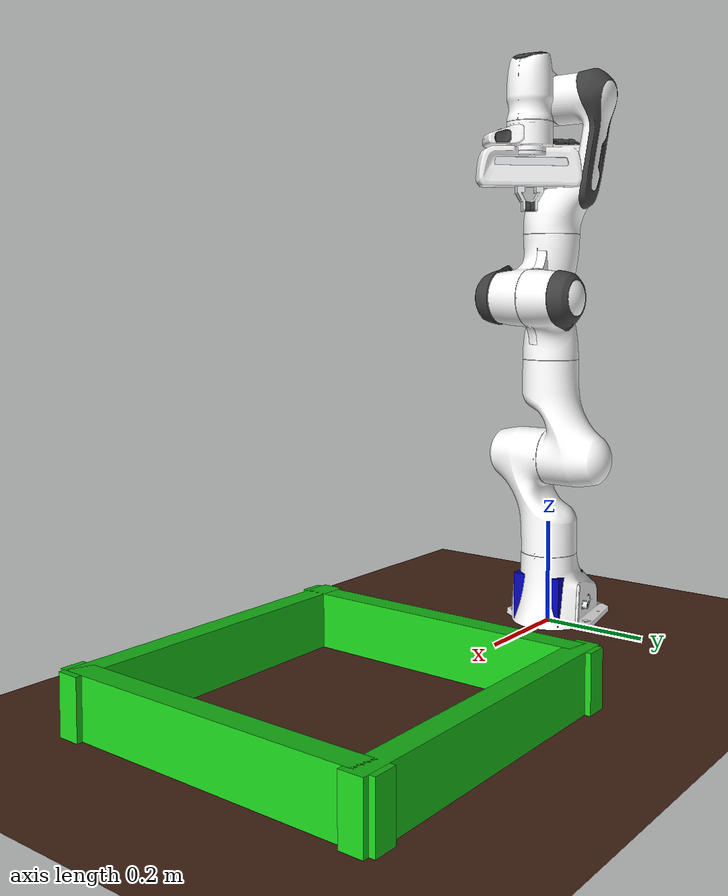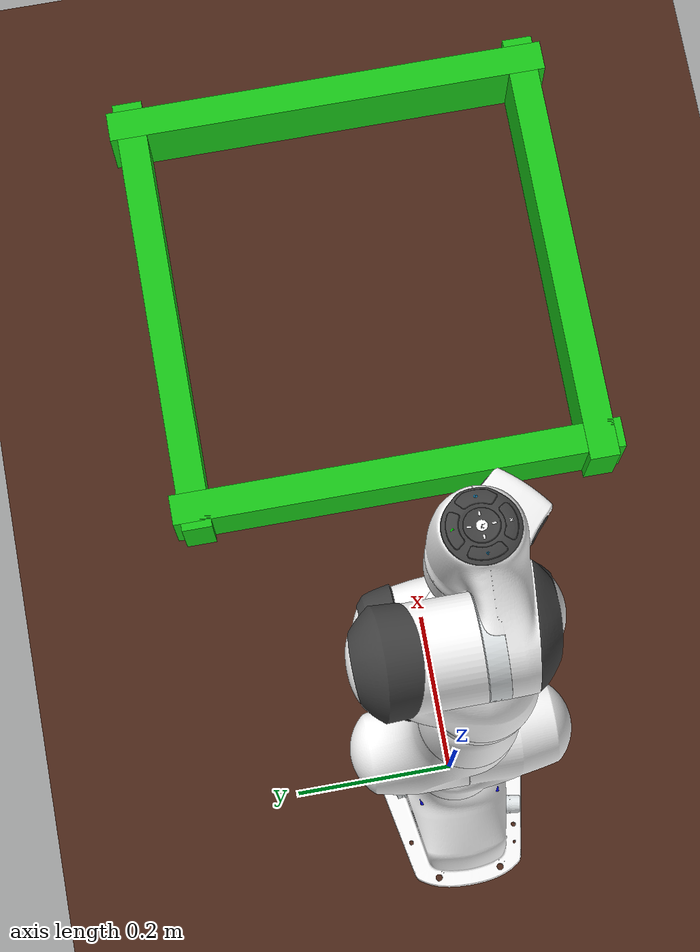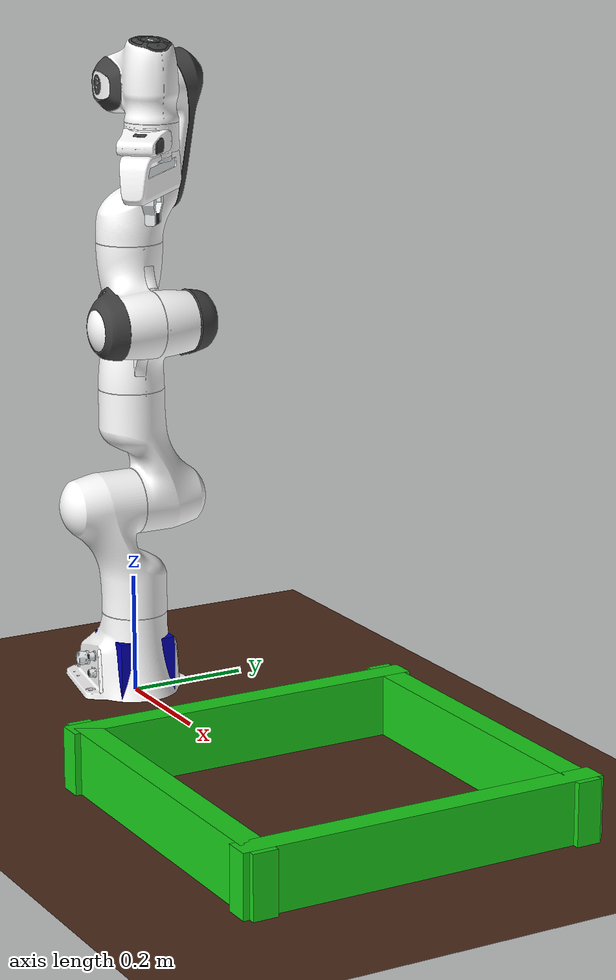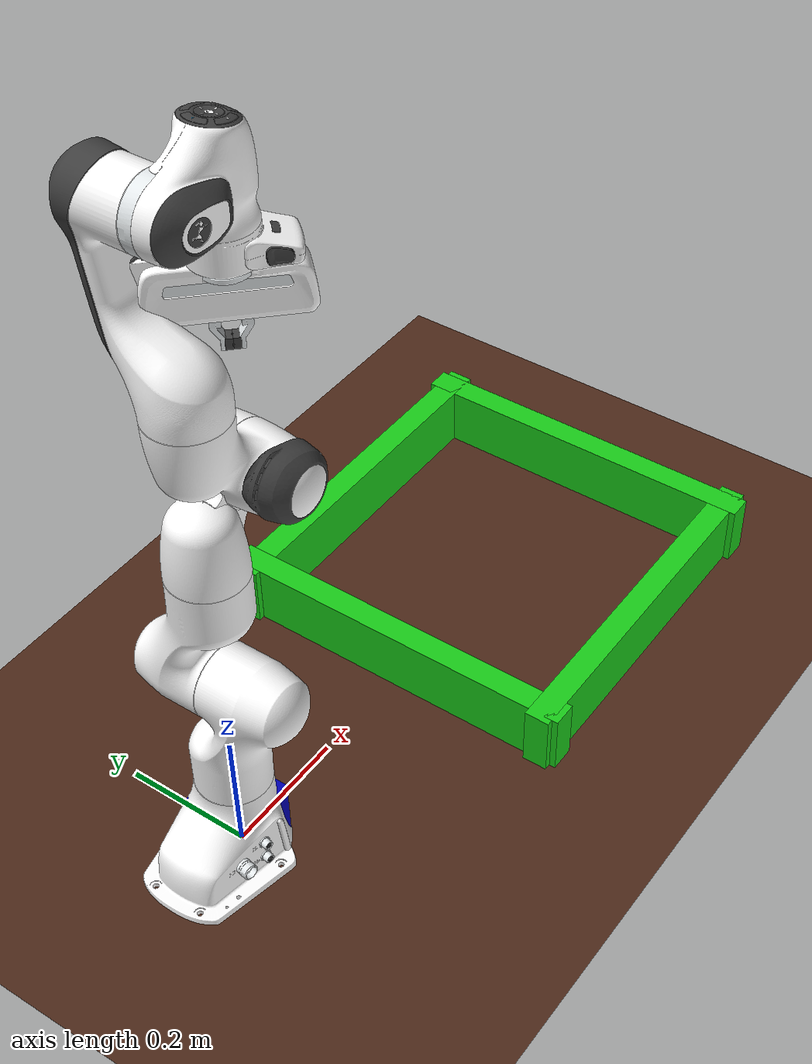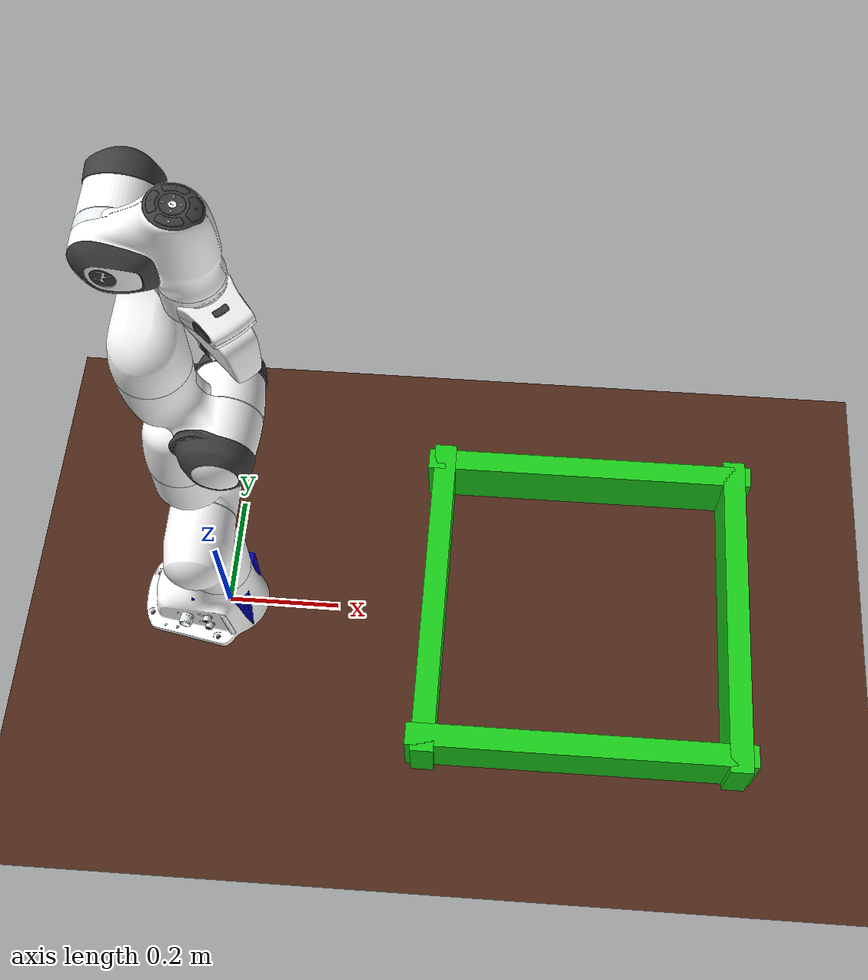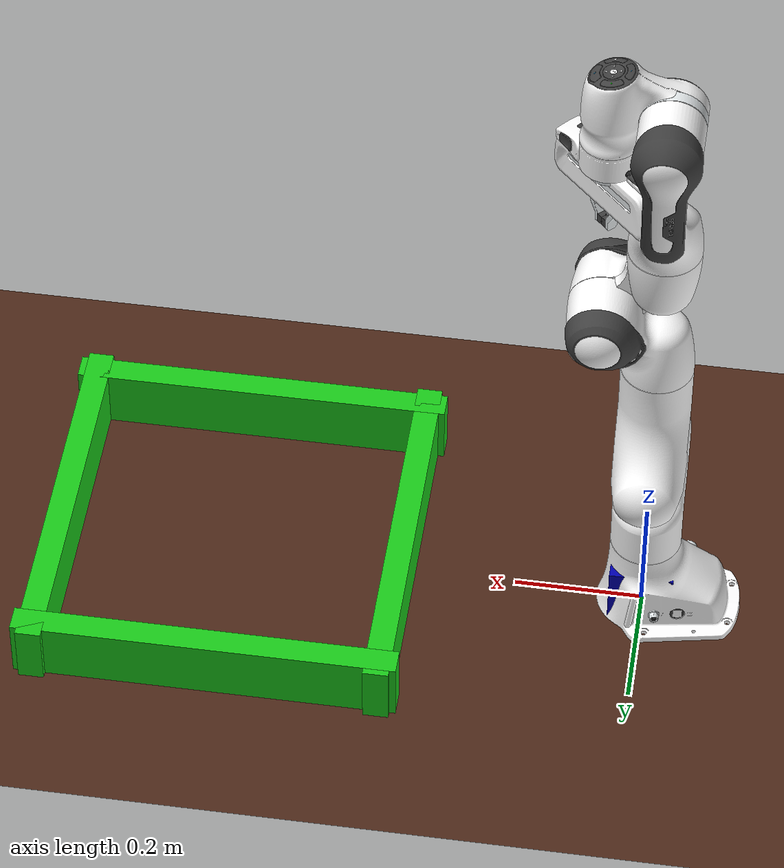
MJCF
<!-- カメラ位置(0.4, 0, 0.15) -->
<mujoco model="panda scene">
  <include file="panda.xml"/>

  <option timestep="0.001" gravity="0 0 -9.81" iterations="100" cone="elliptic" />
  <statistic center="0.3 0 0.4" extent="1"/>

  <visual>
    <headlight diffuse="0.6 0.6 0.6" ambient="0.3 0.3 0.3" specular="0 0 0"/>
    <rgba haze="0.15 0.25 0.35 1"/>
    <global azimuth="120" elevation="-20"/>
  </visual>

  <asset>
    <texture type="skybox" builtin="gradient" rgb1="0.3 0.5 0.7" rgb2="0 0 0" width="512" height="3072"/>
    <texture type="2d" name="groundplane" builtin="checker" mark="edge" rgb1="0.2 0.3 0.4" rgb2="0.1 0.2 0.3" markrgb="0.8 0.8 0.8" width="300" height="300"/>
    <material name="groundplane" texture="groundplane" texuniform="true" texrepeat="5 5" reflectance="0.2"/>
    <material name="brown_floor" rgba="0.302 0.161 0.102 1" reflectance="0.0" specular="0.05" shininess="0.1"/>
    <material name="start_marker" rgba="1 0 0 0"/>
    <material name="goal_marker" rgba="0 1 0 0"/>
    <material name="wall" rgba="0.1 0.8 0.1 1."/>
  </asset>

  <worldbody>
    <camera name="top_view" pos="0.5 0 1.3" xyaxes="0 -1 0 1 0 0"/>
    <camera name="diagonal_view" pos="0.5 -0.4 0.7" xyaxes="0 -0.8 -0.6   1 0 0"  fovy="45"/>

    <camera name="shoulder" pos="0.4 0.0 0.2" xyaxes="1 0 0 0 0 1"/>
    <camera name="top_reverse0" pos="1.3 0.0 0.7" xyaxes="0 1 0  -1 0 1.2"/>     <!--x_range:[0.715, 1.115]y_range:[-0.2, 0.2]z_range:[0.1, 0.1]-->
    <camera name="top_reverse1"
            pos="1.2 0.0 0.85"
            xyaxes="0 1 0  -1 0 1.2"
            fovy="60"/>

    <light pos="0 0 2.5" dir="0 0 -1" directional="true"/>
    <geom name="floor" size="0 0 0.05" type="plane" material="brown_floor" friction="0.4 0.15 0.01" contype="7" conaffinity="7"/>

    <!-- 透明の壁 -->

    <!-- transparent workspace walls for x:[0.45,0.85], y:[-0.2,0.2] -->

    <geom name="wall_x_min" type="box"
          pos="0.38 0.0 0.05"
          size="0.02 0.30 0.05"
          material="wall" contype="2" conaffinity="5"/>

    <geom name="wall_x_max" type="box"
          pos="0.92 0.0 0.05"
          size="0.02 0.30 0.05"
          material="wall" contype="2" conaffinity="5"/>

    <geom name="wall_y_min" type="box"
          pos="0.65 -0.27 0.05"
          size="0.30 0.02 0.05"
          material="wall" contype="2" conaffinity="5"/>

    <geom name="wall_y_max" type="box"
          pos="0.65 0.27 0.05"
          size="0.30 0.02 0.05"
          material="wall" contype="2" conaffinity="5"/>

    <!-- Start marker -->
    <geom name="start_marker" type="cylinder" size="0.06 0.000001" pos="0.0 -0.3 0.05" material="start_marker" contype="0" conaffinity="0"/>

    <!-- Goal marker -->
    <geom name="goal_marker" type="cylinder" size="0.06 0.000001" pos="0.5 0.3 0.05" material="goal_marker" contype="0" conaffinity="0"/>

    <!-- Blue box (movable object) -->
    <body name="blue_box" pos="0.0 0.0 0.05">
      <inertial pos="0 0 0" mass="10" diaginertia="0.05 0.05 0.05"/>
      <geom name="blue_box" type="box" size="0.05 0.05 0.05" rgba="0 0 0.7 1" contype="4" conaffinity="3" friction="0.4 0.15 0.01"/>
      <joint name="free_joint_blue_box" type="free"/>
    </body>

    <!-- obstacles box -->

  </worldbody>
</mujoco>

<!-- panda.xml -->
<mujoco model="panda">
  <compiler angle="radian" meshdir="assets" autolimits="true"/>

  <option integrator="implicitfast"/>

  <default>
    <default class="panda">
      <material specular="0.5" shininess="0.25"/>
      <joint armature="0.1" damping="1" axis="0 0 1" range="-2.8973 2.8973"/>
      <general dyntype="none" biastype="affine" ctrlrange="-2.8973 2.8973" forcerange="-87 87"/>
      <default class="finger">
        <joint axis="0 1 0" type="slide" range="0 0.04"/>
      </default>

      <default class="visual">
        <geom type="mesh" contype="0" conaffinity="0" group="2"/>
      </default>
      <default class="collision">
        <geom type="mesh" group="3" contype="1" conaffinity="4"/>
        <default class="fingertip_pad_collision_1">
          <geom type="box" size="0.0085 0.004 0.0085" pos="0 0.0055 0.0445"/>
        </default>
        <default class="fingertip_pad_collision_2">
          <geom type="box" size="0.003 0.002 0.003" pos="0.0055 0.002 0.05"/>
        </default>
        <default class="fingertip_pad_collision_3">
          <geom type="box" size="0.003 0.002 0.003" pos="-0.0055 0.002 0.05"/>
        </default>
        <default class="fingertip_pad_collision_4">
          <geom type="box" size="0.003 0.002 0.0035" pos="0.0055 0.002 0.0395"/>
        </default>
        <default class="fingertip_pad_collision_5">
          <geom type="box" size="0.003 0.002 0.0035" pos="-0.0055 0.002 0.0395"/>
        </default>
      </default>
    </default>
  </default>

  <asset>
    <material class="panda" name="white" rgba="1 1 1 1"/>
    <material class="panda" name="off_white" rgba="0.901961 0.921569 0.929412 1"/>
    <material class="panda" name="black" rgba="0.25 0.25 0.25 1"/>
    <material class="panda" name="green" rgba="0 1 0 1"/>
    <material class="panda" name="light_blue" rgba="0.039216 0.541176 0.780392 1"/>

    <!-- Collision meshes -->
    <mesh name="link0_c" file="link0.stl"/>
    <mesh name="link1_c" file="link1.stl"/>
    <mesh name="link2_c" file="link2.stl"/>
    <mesh name="link3_c" file="link3.stl"/>
    <mesh name="link4_c" file="link4.stl"/>
    <mesh name="link5_c0" file="link5_collision_0.obj"/>
    <mesh name="link5_c1" file="link5_collision_1.obj"/>
    <mesh name="link5_c2" file="link5_collision_2.obj"/>
    <mesh name="link6_c" file="link6.stl"/>
    <mesh name="link7_c" file="link7.stl"/>
    <mesh name="hand_c" file="hand.stl"/>

    <!-- Visual meshes -->
    <mesh file="link0_0.obj"/>
    <mesh file="link0_1.obj"/>
    <mesh file="link0_2.obj"/>
    <mesh file="link0_3.obj"/>
    <mesh file="link0_4.obj"/>
    <mesh file="link0_5.obj"/>
    <mesh file="link0_7.obj"/>
    <mesh file="link0_8.obj"/>
    <mesh file="link0_9.obj"/>
    <mesh file="link0_10.obj"/>
    <mesh file="link0_11.obj"/>
    <mesh file="link1.obj"/>
    <mesh file="link2.obj"/>
    <mesh file="link3_0.obj"/>
    <mesh file="link3_1.obj"/>
    <mesh file="link3_2.obj"/>
    <mesh file="link3_3.obj"/>
    <mesh file="link4_0.obj"/>
    <mesh file="link4_1.obj"/>
    <mesh file="link4_2.obj"/>
    <mesh file="link4_3.obj"/>
    <mesh file="link5_0.obj"/>
    <mesh file="link5_1.obj"/>
    <mesh file="link5_2.obj"/>
    <mesh file="link6_0.obj"/>
    <mesh file="link6_1.obj"/>
    <mesh file="link6_2.obj"/>
    <mesh file="link6_3.obj"/>
    <mesh file="link6_4.obj"/>
    <mesh file="link6_5.obj"/>
    <mesh file="link6_6.obj"/>
    <mesh file="link6_7.obj"/>
    <mesh file="link6_8.obj"/>
    <mesh file="link6_9.obj"/>
    <mesh file="link6_10.obj"/>
    <mesh file="link6_11.obj"/>
    <mesh file="link6_12.obj"/>
    <mesh file="link6_13.obj"/>
    <mesh file="link6_14.obj"/>
    <mesh file="link6_15.obj"/>
    <mesh file="link6_16.obj"/>
    <mesh file="link7_0.obj"/>
    <mesh file="link7_1.obj"/>
    <mesh file="link7_2.obj"/>
    <mesh file="link7_3.obj"/>
    <mesh file="link7_4.obj"/>
    <mesh file="link7_5.obj"/>
    <mesh file="link7_6.obj"/>
    <mesh file="link7_7.obj"/>
    <mesh file="hand_0.obj"/>
    <mesh file="hand_1.obj"/>
    <mesh file="hand_2.obj"/>
    <mesh file="hand_3.obj"/>
    <mesh file="hand_4.obj"/>
    <mesh file="finger_0.obj"/>
    <mesh file="finger_1.obj"/>
  </asset>

  <worldbody>
    <light name="top" pos="0 0 2" mode="trackcom"/>
    <body name="link0" pos="0 0 0" childclass="panda">
      <inertial mass="0.629769" pos="-0.041018 -0.00014 0.049974"
        fullinertia="0.00315 0.00388 0.004285 8.2904e-7 0.00015 8.2299e-6"/>
      <geom mesh="link0_0" material="off_white" class="visual"/>
      <geom mesh="link0_1" material="black" class="visual"/>
      <geom mesh="link0_2" material="off_white" class="visual"/>
      <geom mesh="link0_3" material="black" class="visual"/>
      <geom mesh="link0_4" material="off_white" class="visual"/>
      <geom mesh="link0_5" material="black" class="visual"/>
      <geom mesh="link0_7" material="white" class="visual"/>
      <geom mesh="link0_8" material="white" class="visual"/>
      <geom mesh="link0_9" material="black" class="visual"/>
      <geom mesh="link0_10" material="off_white" class="visual"/>
      <geom mesh="link0_11" material="white" class="visual"/>
      <geom name="link0_c" mesh="link0_c" class="collision"/>
      <body name="link1" pos="0 0 0.333">
        <inertial mass="4.970684" pos="0.003875 0.002081 -0.04762"
          fullinertia="0.70337 0.70661 0.0091170 -0.00013900 0.0067720 0.019169"/>
        <joint name="joint1"/>
        <geom material="white" mesh="link1" class="visual"/>
        <geom name="link1_c" mesh="link1_c" class="collision"/>
        <body name="link2" quat="1 -1 0 0">
          <inertial mass="0.646926" pos="-0.003141 -0.02872 0.003495"
            fullinertia="0.0079620 2.8110e-2 2.5995e-2 -3.925e-3 1.0254e-2 7.04e-4"/>
          <joint name="joint2" range="-1.7628 1.7628"/>
          <geom material="white" mesh="link2" class="visual"/>
          <geom name="link2_c" mesh="link2_c" class="collision"/>
          <body name="link3" pos="0 -0.316 0" quat="1 1 0 0">
            <joint name="joint3"/>
            <inertial mass="3.228604" pos="2.7518e-2 3.9252e-2 -6.6502e-2"
              fullinertia="3.7242e-2 3.6155e-2 1.083e-2 -4.761e-3 -1.1396e-2 -1.2805e-2"/>
            <geom mesh="link3_0" material="white" class="visual"/>
            <geom mesh="link3_1" material="white" class="visual"/>
            <geom mesh="link3_2" material="white" class="visual"/>
            <geom mesh="link3_3" material="black" class="visual"/>
            <geom name="link3_c" mesh="link3_c" class="collision"/>
            <body name="link4" pos="0.0825 0 0" quat="1 1 0 0">
              <inertial mass="3.587895" pos="-5.317e-2 1.04419e-1 2.7454e-2"
                fullinertia="2.5853e-2 1.9552e-2 2.8323e-2 7.796e-3 -1.332e-3 8.641e-3"/>
              <joint name="joint4" range="-3.0718 -0.0698"/>
              <geom mesh="link4_0" material="white" class="visual"/>
              <geom mesh="link4_1" material="white" class="visual"/>
              <geom mesh="link4_2" material="black" class="visual"/>
              <geom mesh="link4_3" material="white" class="visual"/>
              <geom name="link4_c" mesh="link4_c" class="collision"/>
              <body name="link5" pos="-0.0825 0.384 0" quat="1 -1 0 0">
                <inertial mass="1.225946" pos="-1.1953e-2 4.1065e-2 -3.8437e-2"
                  fullinertia="3.5549e-2 2.9474e-2 8.627e-3 -2.117e-3 -4.037e-3 2.29e-4"/>
                <joint name="joint5"/>
                <geom mesh="link5_0" material="black" class="visual"/>
                <geom mesh="link5_1" material="white" class="visual"/>
                <geom mesh="link5_2" material="white" class="visual"/>
                <geom name="link5_c0" mesh="link5_c0" class="collision"/>
                <geom name="link5_c1" mesh="link5_c1" class="collision"/>
                <geom name="link5_c2" mesh="link5_c2" class="collision"/>
                <body name="link6" quat="1 1 0 0">
                  <inertial mass="1.666555" pos="6.0149e-2 -1.4117e-2 -1.0517e-2"
                    fullinertia="1.964e-3 4.354e-3 5.433e-3 1.09e-4 -1.158e-3 3.41e-4"/>
                  <joint name="joint6" range="-0.0175 3.7525"/>
                  <geom mesh="link6_0" material="off_white" class="visual"/>
                  <geom mesh="link6_1" material="white" class="visual"/>
                  <geom mesh="link6_2" material="black" class="visual"/>
                  <geom mesh="link6_3" material="white" class="visual"/>
                  <geom mesh="link6_4" material="white" class="visual"/>
                  <geom mesh="link6_5" material="white" class="visual"/>
                  <geom mesh="link6_6" material="white" class="visual"/>
                  <geom mesh="link6_7" material="light_blue" class="visual"/>
                  <geom mesh="link6_8" material="light_blue" class="visual"/>
                  <geom mesh="link6_9" material="black" class="visual"/>
                  <geom mesh="link6_10" material="black" class="visual"/>
                  <geom mesh="link6_11" material="white" class="visual"/>
                  <geom mesh="link6_12" material="green" class="visual"/>
                  <geom mesh="link6_13" material="white" class="visual"/>
                  <geom mesh="link6_14" material="black" class="visual"/>
                  <geom mesh="link6_15" material="black" class="visual"/>
                  <geom mesh="link6_16" material="white" class="visual"/>
                  <geom name="link6_c" mesh="link6_c" class="collision"/>
                  <body name="link7" pos="0.088 0 0" quat="1 1 0 0">
                    <inertial mass="7.35522e-01" pos="1.0517e-2 -4.252e-3 6.1597e-2"
                      fullinertia="1.2516e-2 1.0027e-2 4.815e-3 -4.28e-4 -1.196e-3 -7.41e-4"/>
                    <joint name="joint7"/>
                    <geom mesh="link7_0" material="white" class="visual"/>
                    <geom mesh="link7_1" material="black" class="visual"/>
                    <geom mesh="link7_2" material="black" class="visual"/>
                    <geom mesh="link7_3" material="black" class="visual"/>
                    <geom mesh="link7_4" material="black" class="visual"/>
                    <geom mesh="link7_5" material="black" class="visual"/>
                    <geom mesh="link7_6" material="black" class="visual"/>
                    <geom mesh="link7_7" material="white" class="visual"/>
                    <geom name="link7_c" mesh="link7_c" class="collision"/>
                    <body name="hand" pos="0 0 0.107" quat="0.9238795 0 0 -0.3826834">
                      <site name="ee_target" pos="0 0 0.127" size="0.00001" rgba="1 0 0 0"/>
                      <inertial mass="0.73" pos="-0.01 0 0.03" diaginertia="0.001 0.0025 0.0017"/>
                      <geom mesh="hand_0" material="off_white" class="visual"/>
                      <geom mesh="hand_1" material="black" class="visual"/>
                      <geom mesh="hand_2" material="black" class="visual"/>
                      <geom mesh="hand_3" material="white" class="visual"/>
                      <geom mesh="hand_4" material="off_white" class="visual"/>
                      <geom name="hand_c" mesh="hand_c" class="collision"/>
                      <body name="left_finger" pos="0 0 0.0584">
                        <inertial mass="0.015" pos="0 0 0" diaginertia="2.375e-6 2.375e-6 7.5e-7"/>
                        <joint name="finger_joint1" class="finger"/>
                        <geom mesh="finger_0" material="off_white" class="visual"/>
                        <geom mesh="finger_1" material="black" class="visual"/>
                        <geom name="left_finger_0" mesh="finger_0" class="collision"/>
                        <geom class="fingertip_pad_collision_1"/>
                        <geom class="fingertip_pad_collision_2"/>
                        <geom class="fingertip_pad_collision_3"/>
                        <geom class="fingertip_pad_collision_4"/>
                        <geom class="fingertip_pad_collision_5"/>
                      </body>
                      <body name="right_finger" pos="0 0 0.0584" quat="0 0 0 1">
                        <inertial mass="0.015" pos="0 0 0" diaginertia="2.375e-6 2.375e-6 7.5e-7"/>
                        <joint name="finger_joint2" class="finger"/>
                        <geom mesh="finger_0" material="off_white" class="visual"/>
                        <geom mesh="finger_1" material="black" class="visual"/>
                        <geom name="right_finger_0" mesh="finger_0" class="collision"/>
                        <geom name="fingertip_pad_collision_1" class="fingertip_pad_collision_1"/>
                        <geom name="fingertip_pad_collision_2" class="fingertip_pad_collision_2"/>
                        <geom name="fingertip_pad_collision_3" class="fingertip_pad_collision_3"/>
                        <geom name="fingertip_pad_collision_4" class="fingertip_pad_collision_4"/>
                        <geom name="fingertip_pad_collision_5" class="fingertip_pad_collision_5"/>
                      </body>
                    </body>
                  </body>
                </body>
              </body>
            </body>
          </body>
        </body>
      </body>
    </body>
  </worldbody>

  <tendon>
    <fixed name="split">
      <joint joint="finger_joint1" coef="0.5"/>
      <joint joint="finger_joint2" coef="0.5"/>
    </fixed>
  </tendon>

  <equality>
    <joint joint1="finger_joint1" joint2="finger_joint2" solimp="0.95 0.99 0.001" solref="0.005 1"/>
  </equality>

  <actuator>
    <general name="actuator1" joint="joint1"
            class="panda"
            gear="1"
            gainprm="10000"
            biasprm="0 -10000 -500"
            forcerange="-200 200"
            />
    <general name="actuator2" joint="joint2"
            class="panda"
            gear="1"
            gainprm="10000"
            biasprm="0 -10000 -500"
            forcerange="-200 200"
            ctrlrange="-1.7628 1.7628"
            />
    <general name="actuator3" joint="joint3"
            class="panda"
            gear="1"
            gainprm="10000"
            biasprm="0 -10000 -500"
            forcerange="-200 200"
            />
    <general name="actuator4" joint="joint4"
            class="panda"
            gear="1"
            gainprm="10000"
            biasprm="0 -10000 -500"
            forcerange="-200 200"
            ctrlrange="-3.0718 -0.0698"
            />
    <general name="actuator5" joint="joint5"
            class="panda"
            gear="1"
            gainprm="10000"
            biasprm="0 -10000 -500"
            forcerange="-200 200"
            />
    <general name="actuator6" joint="joint6"
            class="panda"
            gear="1"
            gainprm="10000"
            biasprm="0 -10000 -500"
            forcerange="-200 200"
            ctrlrange="-0.0175 3.7525"
            />
    <general name="actuator7" joint="joint7"
            class="panda"
            gear="1"
            gainprm="10000"
            biasprm="0 -10000 -500"
            forcerange="-200 200"
            />
  </actuator>

</mujoco>
